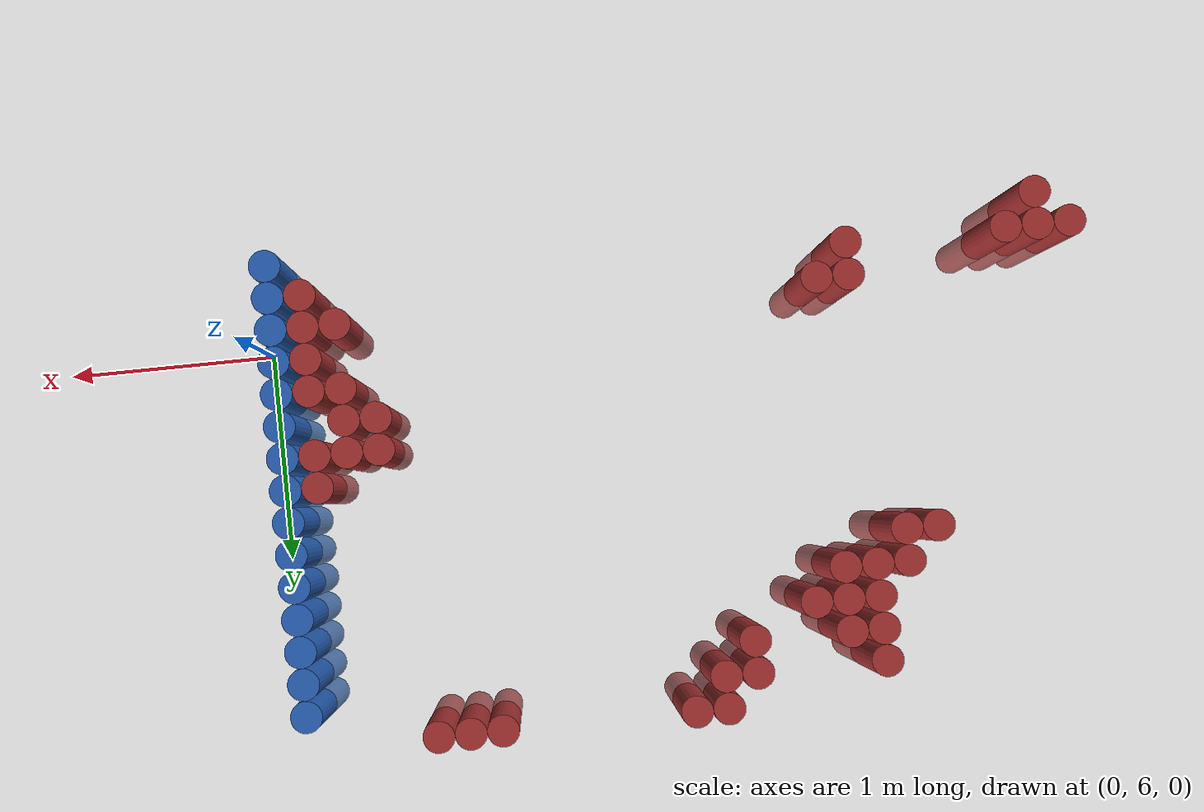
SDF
<sdf version="1.6">
 <world name="default">
  <model name="ground_plane">
   <static>1</static>
   <link name="link">
    <collision name="collision">
     <geometry><plane><normal>0 0 1</normal><size>100 100</size></plane></geometry>
     <surface><friction><ode><mu>100</mu><mu2>50</mu2></ode></friction></surface>
    </collision>
    <visual name="visual">
     <cast_shadows>0</cast_shadows>
     <geometry><plane><normal>0 0 1</normal><size>100 100</size></plane></geometry>
     <material>
      <script><uri>file://media/materials/scripts/gazebo.material</uri><name>Gazebo/Grey</name></script>
     </material>
    </visual>
   </link>
  </model>
  <model name="unit_cylinder_155">
   <static>1</static>
   <pose>-3.825000 5.775000 0.000000 0.000000 0.000000 0.000000</pose>
   <link name="link">
    <inertial>
     <mass>1</mass>
     <inertia><ixx>0.145833</ixx><ixy>0</ixy><ixz>0</ixz><iyy>0.145833</iyy><iyz>0</iyz><izz>0.125</izz></inertia>
    </inertial>
    <collision name="collision">
     <geometry><cylinder><radius>0.075000</radius><length>1</length></cylinder></geometry>
    </collision>
    <visual name="visual">
     <geometry><cylinder><radius>0.075000</radius><length>1</length></cylinder></geometry>
     <material>
      <ambient>0.648000 0.192000 0.192000 1</ambient>
      <diffuse>0.648000 0.192000 0.192000 1</diffuse>
     </material>
     <material>
      <script><name>Gazebo/Grey</name><uri>file://media/materials/scripts/gazebo.material</uri></script>
     </material>
    </visual>
   </link>
  </model>
  <model name="unit_cylinder_156">
   <static>1</static>
   <pose>-3.675000 5.625000 0.000000 0.000000 0.000000 0.000000</pose>
   <link name="link">
    <inertial>
     <mass>1</mass>
     <inertia><ixx>0.145833</ixx><ixy>0</ixy><ixz>0</ixz><iyy>0.145833</iyy><iyz>0</iyz><izz>0.125</izz></inertia>
    </inertial>
    <collision name="collision">
     <geometry><cylinder><radius>0.075000</radius><length>1</length></cylinder></geometry>
    </collision>
    <visual name="visual">
     <geometry><cylinder><radius>0.075000</radius><length>1</length></cylinder></geometry>
     <material>
      <ambient>0.648000 0.192000 0.192000 1</ambient>
      <diffuse>0.648000 0.192000 0.192000 1</diffuse>
     </material>
     <material>
      <script><name>Gazebo/Grey</name><uri>file://media/materials/scripts/gazebo.material</uri></script>
     </material>
    </visual>
   </link>
  </model>
  <model name="unit_cylinder_157">
   <static>1</static>
   <pose>-3.675000 5.775000 0.000000 0.000000 0.000000 0.000000</pose>
   <link name="link">
    <inertial>
     <mass>1</mass>
     <inertia><ixx>0.145833</ixx><ixy>0</ixy><ixz>0</ixz><iyy>0.145833</iyy><iyz>0</iyz><izz>0.125</izz></inertia>
    </inertial>
    <collision name="collision">
     <geometry><cylinder><radius>0.075000</radius><length>1</length></cylinder></geometry>
    </collision>
    <visual name="visual">
     <geometry><cylinder><radius>0.075000</radius><length>1</length></cylinder></geometry>
     <material>
      <ambient>0.648000 0.192000 0.192000 1</ambient>
      <diffuse>0.648000 0.192000 0.192000 1</diffuse>
     </material>
     <material>
      <script><name>Gazebo/Grey</name><uri>file://media/materials/scripts/gazebo.material</uri></script>
     </material>
    </visual>
   </link>
  </model>
  <model name="unit_cylinder_158">
   <static>1</static>
   <pose>-3.525000 5.775000 0.000000 0.000000 0.000000 0.000000</pose>
   <link name="link">
    <inertial>
     <mass>1</mass>
     <inertia><ixx>0.145833</ixx><ixy>0</ixy><ixz>0</ixz><iyy>0.145833</iyy><iyz>0</iyz><izz>0.125</izz></inertia>
    </inertial>
    <collision name="collision">
     <geometry><cylinder><radius>0.075000</radius><length>1</length></cylinder></geometry>
    </collision>
    <visual name="visual">
     <geometry><cylinder><radius>0.075000</radius><length>1</length></cylinder></geometry>
     <material>
      <ambient>0.648000 0.192000 0.192000 1</ambient>
      <diffuse>0.648000 0.192000 0.192000 1</diffuse>
     </material>
     <material>
      <script><name>Gazebo/Grey</name><uri>file://media/materials/scripts/gazebo.material</uri></script>
     </material>
    </visual>
   </link>
  </model>
  <model name="unit_cylinder_161">
   <static>1</static>
   <pose>-3.075000 7.125000 0.000000 0.000000 0.000000 0.000000</pose>
   <link name="link">
    <inertial>
     <mass>1</mass>
     <inertia><ixx>0.145833</ixx><ixy>0</ixy><ixz>0</ixz><iyy>0.145833</iyy><iyz>0</iyz><izz>0.125</izz></inertia>
    </inertial>
    <collision name="collision">
     <geometry><cylinder><radius>0.075000</radius><length>1</length></cylinder></geometry>
    </collision>
    <visual name="visual">
     <geometry><cylinder><radius>0.075000</radius><length>1</length></cylinder></geometry>
     <material>
      <ambient>0.648000 0.192000 0.192000 1</ambient>
      <diffuse>0.648000 0.192000 0.192000 1</diffuse>
     </material>
     <material>
      <script><name>Gazebo/Grey</name><uri>file://media/materials/scripts/gazebo.material</uri></script>
     </material>
    </visual>
   </link>
  </model>
  <model name="unit_cylinder_163">
   <static>1</static>
   <pose>-2.925000 7.125000 0.000000 0.000000 0.000000 0.000000</pose>
   <link name="link">
    <inertial>
     <mass>1</mass>
     <inertia><ixx>0.145833</ixx><ixy>0</ixy><ixz>0</ixz><iyy>0.145833</iyy><iyz>0</iyz><izz>0.125</izz></inertia>
    </inertial>
    <collision name="collision">
     <geometry><cylinder><radius>0.075000</radius><length>1</length></cylinder></geometry>
    </collision>
    <visual name="visual">
     <geometry><cylinder><radius>0.075000</radius><length>1</length></cylinder></geometry>
     <material>
      <ambient>0.648000 0.192000 0.192000 1</ambient>
      <diffuse>0.648000 0.192000 0.192000 1</diffuse>
     </material>
     <material>
      <script><name>Gazebo/Grey</name><uri>file://media/materials/scripts/gazebo.material</uri></script>
     </material>
    </visual>
   </link>
  </model>
  <model name="unit_cylinder_164">
   <static>1</static>
   <pose>-2.925000 7.275000 0.000000 0.000000 0.000000 0.000000</pose>
   <link name="link">
    <inertial>
     <mass>1</mass>
     <inertia><ixx>0.145833</ixx><ixy>0</ixy><ixz>0</ixz><iyy>0.145833</iyy><iyz>0</iyz><izz>0.125</izz></inertia>
    </inertial>
    <collision name="collision">
     <geometry><cylinder><radius>0.075000</radius><length>1</length></cylinder></geometry>
    </collision>
    <visual name="visual">
     <geometry><cylinder><radius>0.075000</radius><length>1</length></cylinder></geometry>
     <material>
      <ambient>0.648000 0.192000 0.192000 1</ambient>
      <diffuse>0.648000 0.192000 0.192000 1</diffuse>
     </material>
     <material>
      <script><name>Gazebo/Grey</name><uri>file://media/materials/scripts/gazebo.material</uri></script>
     </material>
    </visual>
   </link>
  </model>
  <model name="unit_cylinder_165">
   <static>1</static>
   <pose>-2.775000 5.775000 0.000000 0.000000 0.000000 0.000000</pose>
   <link name="link">
    <inertial>
     <mass>1</mass>
     <inertia><ixx>0.145833</ixx><ixy>0</ixy><ixz>0</ixz><iyy>0.145833</iyy><iyz>0</iyz><izz>0.125</izz></inertia>
    </inertial>
    <collision name="collision">
     <geometry><cylinder><radius>0.075000</radius><length>1</length></cylinder></geometry>
    </collision>
    <visual name="visual">
     <geometry><cylinder><radius>0.075000</radius><length>1</length></cylinder></geometry>
     <material>
      <ambient>0.648000 0.192000 0.192000 1</ambient>
      <diffuse>0.648000 0.192000 0.192000 1</diffuse>
     </material>
     <material>
      <script><name>Gazebo/Grey</name><uri>file://media/materials/scripts/gazebo.material</uri></script>
     </material>
    </visual>
   </link>
  </model>
  <model name="unit_cylinder_166">
   <static>1</static>
   <pose>-2.775000 5.925000 0.000000 0.000000 0.000000 0.000000</pose>
   <link name="link">
    <inertial>
     <mass>1</mass>
     <inertia><ixx>0.145833</ixx><ixy>0</ixy><ixz>0</ixz><iyy>0.145833</iyy><iyz>0</iyz><izz>0.125</izz></inertia>
    </inertial>
    <collision name="collision">
     <geometry><cylinder><radius>0.075000</radius><length>1</length></cylinder></geometry>
    </collision>
    <visual name="visual">
     <geometry><cylinder><radius>0.075000</radius><length>1</length></cylinder></geometry>
     <material>
      <ambient>0.648000 0.192000 0.192000 1</ambient>
      <diffuse>0.648000 0.192000 0.192000 1</diffuse>
     </material>
     <material>
      <script><name>Gazebo/Grey</name><uri>file://media/materials/scripts/gazebo.material</uri></script>
     </material>
    </visual>
   </link>
  </model>
  <model name="unit_cylinder_167">
   <static>1</static>
   <pose>-2.775000 7.275000 0.000000 0.000000 0.000000 0.000000</pose>
   <link name="link">
    <inertial>
     <mass>1</mass>
     <inertia><ixx>0.145833</ixx><ixy>0</ixy><ixz>0</ixz><iyy>0.145833</iyy><iyz>0</iyz><izz>0.125</izz></inertia>
    </inertial>
    <collision name="collision">
     <geometry><cylinder><radius>0.075000</radius><length>1</length></cylinder></geometry>
    </collision>
    <visual name="visual">
     <geometry><cylinder><radius>0.075000</radius><length>1</length></cylinder></geometry>
     <material>
      <ambient>0.648000 0.192000 0.192000 1</ambient>
      <diffuse>0.648000 0.192000 0.192000 1</diffuse>
     </material>
     <material>
      <script><name>Gazebo/Grey</name><uri>file://media/materials/scripts/gazebo.material</uri></script>
     </material>
    </visual>
   </link>
  </model>
  <model name="unit_cylinder_168">
   <static>1</static>
   <pose>-2.775000 7.425000 0.000000 0.000000 0.000000 0.000000</pose>
   <link name="link">
    <inertial>
     <mass>1</mass>
     <inertia><ixx>0.145833</ixx><ixy>0</ixy><ixz>0</ixz><iyy>0.145833</iyy><iyz>0</iyz><izz>0.125</izz></inertia>
    </inertial>
    <collision name="collision">
     <geometry><cylinder><radius>0.075000</radius><length>1</length></cylinder></geometry>
    </collision>
    <visual name="visual">
     <geometry><cylinder><radius>0.075000</radius><length>1</length></cylinder></geometry>
     <material>
      <ambient>0.648000 0.192000 0.192000 1</ambient>
      <diffuse>0.648000 0.192000 0.192000 1</diffuse>
     </material>
     <material>
      <script><name>Gazebo/Grey</name><uri>file://media/materials/scripts/gazebo.material</uri></script>
     </material>
    </visual>
   </link>
  </model>
  <model name="unit_cylinder_169">
   <static>1</static>
   <pose>-2.775000 7.575000 0.000000 0.000000 0.000000 0.000000</pose>
   <link name="link">
    <inertial>
     <mass>1</mass>
     <inertia><ixx>0.145833</ixx><ixy>0</ixy><ixz>0</ixz><iyy>0.145833</iyy><iyz>0</iyz><izz>0.125</izz></inertia>
    </inertial>
    <collision name="collision">
     <geometry><cylinder><radius>0.075000</radius><length>1</length></cylinder></geometry>
    </collision>
    <visual name="visual">
     <geometry><cylinder><radius>0.075000</radius><length>1</length></cylinder></geometry>
     <material>
      <ambient>0.648000 0.192000 0.192000 1</ambient>
      <diffuse>0.648000 0.192000 0.192000 1</diffuse>
     </material>
     <material>
      <script><name>Gazebo/Grey</name><uri>file://media/materials/scripts/gazebo.material</uri></script>
     </material>
    </visual>
   </link>
  </model>
  <model name="unit_cylinder_170">
   <static>1</static>
   <pose>-2.775000 7.725000 0.000000 0.000000 0.000000 0.000000</pose>
   <link name="link">
    <inertial>
     <mass>1</mass>
     <inertia><ixx>0.145833</ixx><ixy>0</ixy><ixz>0</ixz><iyy>0.145833</iyy><iyz>0</iyz><izz>0.125</izz></inertia>
    </inertial>
    <collision name="collision">
     <geometry><cylinder><radius>0.075000</radius><length>1</length></cylinder></geometry>
    </collision>
    <visual name="visual">
     <geometry><cylinder><radius>0.075000</radius><length>1</length></cylinder></geometry>
     <material>
      <ambient>0.648000 0.192000 0.192000 1</ambient>
      <diffuse>0.648000 0.192000 0.192000 1</diffuse>
     </material>
     <material>
      <script><name>Gazebo/Grey</name><uri>file://media/materials/scripts/gazebo.material</uri></script>
     </material>
    </visual>
   </link>
  </model>
  <model name="unit_cylinder_171">
   <static>1</static>
   <pose>-2.625000 5.925000 0.000000 0.000000 0.000000 0.000000</pose>
   <link name="link">
    <inertial>
     <mass>1</mass>
     <inertia><ixx>0.145833</ixx><ixy>0</ixy><ixz>0</ixz><iyy>0.145833</iyy><iyz>0</iyz><izz>0.125</izz></inertia>
    </inertial>
    <collision name="collision">
     <geometry><cylinder><radius>0.075000</radius><length>1</length></cylinder></geometry>
    </collision>
    <visual name="visual">
     <geometry><cylinder><radius>0.075000</radius><length>1</length></cylinder></geometry>
     <material>
      <ambient>0.648000 0.192000 0.192000 1</ambient>
      <diffuse>0.648000 0.192000 0.192000 1</diffuse>
     </material>
     <material>
      <script><name>Gazebo/Grey</name><uri>file://media/materials/scripts/gazebo.material</uri></script>
     </material>
    </visual>
   </link>
  </model>
  <model name="unit_cylinder_172">
   <static>1</static>
   <pose>-2.625000 7.275000 0.000000 0.000000 0.000000 0.000000</pose>
   <link name="link">
    <inertial>
     <mass>1</mass>
     <inertia><ixx>0.145833</ixx><ixy>0</ixy><ixz>0</ixz><iyy>0.145833</iyy><iyz>0</iyz><izz>0.125</izz></inertia>
    </inertial>
    <collision name="collision">
     <geometry><cylinder><radius>0.075000</radius><length>1</length></cylinder></geometry>
    </collision>
    <visual name="visual">
     <geometry><cylinder><radius>0.075000</radius><length>1</length></cylinder></geometry>
     <material>
      <ambient>0.648000 0.192000 0.192000 1</ambient>
      <diffuse>0.648000 0.192000 0.192000 1</diffuse>
     </material>
     <material>
      <script><name>Gazebo/Grey</name><uri>file://media/materials/scripts/gazebo.material</uri></script>
     </material>
    </visual>
   </link>
  </model>
  <model name="unit_cylinder_173">
   <static>1</static>
   <pose>-2.625000 7.425000 0.000000 0.000000 0.000000 0.000000</pose>
   <link name="link">
    <inertial>
     <mass>1</mass>
     <inertia><ixx>0.145833</ixx><ixy>0</ixy><ixz>0</ixz><iyy>0.145833</iyy><iyz>0</iyz><izz>0.125</izz></inertia>
    </inertial>
    <collision name="collision">
     <geometry><cylinder><radius>0.075000</radius><length>1</length></cylinder></geometry>
    </collision>
    <visual name="visual">
     <geometry><cylinder><radius>0.075000</radius><length>1</length></cylinder></geometry>
     <material>
      <ambient>0.648000 0.192000 0.192000 1</ambient>
      <diffuse>0.648000 0.192000 0.192000 1</diffuse>
     </material>
     <material>
      <script><name>Gazebo/Grey</name><uri>file://media/materials/scripts/gazebo.material</uri></script>
     </material>
    </visual>
   </link>
  </model>
  <model name="unit_cylinder_174">
   <static>1</static>
   <pose>-2.625000 7.575000 0.000000 0.000000 0.000000 0.000000</pose>
   <link name="link">
    <inertial>
     <mass>1</mass>
     <inertia><ixx>0.145833</ixx><ixy>0</ixy><ixz>0</ixz><iyy>0.145833</iyy><iyz>0</iyz><izz>0.125</izz></inertia>
    </inertial>
    <collision name="collision">
     <geometry><cylinder><radius>0.075000</radius><length>1</length></cylinder></geometry>
    </collision>
    <visual name="visual">
     <geometry><cylinder><radius>0.075000</radius><length>1</length></cylinder></geometry>
     <material>
      <ambient>0.648000 0.192000 0.192000 1</ambient>
      <diffuse>0.648000 0.192000 0.192000 1</diffuse>
     </material>
     <material>
      <script><name>Gazebo/Grey</name><uri>file://media/materials/scripts/gazebo.material</uri></script>
     </material>
    </visual>
   </link>
  </model>
  <model name="unit_cylinder_175">
   <static>1</static>
   <pose>-2.475000 7.425000 0.000000 0.000000 0.000000 0.000000</pose>
   <link name="link">
    <inertial>
     <mass>1</mass>
     <inertia><ixx>0.145833</ixx><ixy>0</ixy><ixz>0</ixz><iyy>0.145833</iyy><iyz>0</iyz><izz>0.125</izz></inertia>
    </inertial>
    <collision name="collision">
     <geometry><cylinder><radius>0.075000</radius><length>1</length></cylinder></geometry>
    </collision>
    <visual name="visual">
     <geometry><cylinder><radius>0.075000</radius><length>1</length></cylinder></geometry>
     <material>
      <ambient>0.648000 0.192000 0.192000 1</ambient>
      <diffuse>0.648000 0.192000 0.192000 1</diffuse>
     </material>
     <material>
      <script><name>Gazebo/Grey</name><uri>file://media/materials/scripts/gazebo.material</uri></script>
     </material>
    </visual>
   </link>
  </model>
  <model name="unit_cylinder_176">
   <static>1</static>
   <pose>-2.175000 7.575000 0.000000 0.000000 0.000000 0.000000</pose>
   <link name="link">
    <inertial>
     <mass>1</mass>
     <inertia><ixx>0.145833</ixx><ixy>0</ixy><ixz>0</ixz><iyy>0.145833</iyy><iyz>0</iyz><izz>0.125</izz></inertia>
    </inertial>
    <collision name="collision">
     <geometry><cylinder><radius>0.075000</radius><length>1</length></cylinder></geometry>
    </collision>
    <visual name="visual">
     <geometry><cylinder><radius>0.075000</radius><length>1</length></cylinder></geometry>
     <material>
      <ambient>0.648000 0.192000 0.192000 1</ambient>
      <diffuse>0.648000 0.192000 0.192000 1</diffuse>
     </material>
     <material>
      <script><name>Gazebo/Grey</name><uri>file://media/materials/scripts/gazebo.material</uri></script>
     </material>
    </visual>
   </link>
  </model>
  <model name="unit_cylinder_177">
   <static>1</static>
   <pose>-2.175000 7.725000 0.000000 0.000000 0.000000 0.000000</pose>
   <link name="link">
    <inertial>
     <mass>1</mass>
     <inertia><ixx>0.145833</ixx><ixy>0</ixy><ixz>0</ixz><iyy>0.145833</iyy><iyz>0</iyz><izz>0.125</izz></inertia>
    </inertial>
    <collision name="collision">
     <geometry><cylinder><radius>0.075000</radius><length>1</length></cylinder></geometry>
    </collision>
    <visual name="visual">
     <geometry><cylinder><radius>0.075000</radius><length>1</length></cylinder></geometry>
     <material>
      <ambient>0.648000 0.192000 0.192000 1</ambient>
      <diffuse>0.648000 0.192000 0.192000 1</diffuse>
     </material>
     <material>
      <script><name>Gazebo/Grey</name><uri>file://media/materials/scripts/gazebo.material</uri></script>
     </material>
    </visual>
   </link>
  </model>
  <model name="unit_cylinder_178">
   <static>1</static>
   <pose>-2.025000 7.725000 0.000000 0.000000 0.000000 0.000000</pose>
   <link name="link">
    <inertial>
     <mass>1</mass>
     <inertia><ixx>0.145833</ixx><ixy>0</ixy><ixz>0</ixz><iyy>0.145833</iyy><iyz>0</iyz><izz>0.125</izz></inertia>
    </inertial>
    <collision name="collision">
     <geometry><cylinder><radius>0.075000</radius><length>1</length></cylinder></geometry>
    </collision>
    <visual name="visual">
     <geometry><cylinder><radius>0.075000</radius><length>1</length></cylinder></geometry>
     <material>
      <ambient>0.648000 0.192000 0.192000 1</ambient>
      <diffuse>0.648000 0.192000 0.192000 1</diffuse>
     </material>
     <material>
      <script><name>Gazebo/Grey</name><uri>file://media/materials/scripts/gazebo.material</uri></script>
     </material>
    </visual>
   </link>
  </model>
  <model name="unit_cylinder_179">
   <static>1</static>
   <pose>-2.025000 7.875000 0.000000 0.000000 0.000000 0.000000</pose>
   <link name="link">
    <inertial>
     <mass>1</mass>
     <inertia><ixx>0.145833</ixx><ixy>0</ixy><ixz>0</ixz><iyy>0.145833</iyy><iyz>0</iyz><izz>0.125</izz></inertia>
    </inertial>
    <collision name="collision">
     <geometry><cylinder><radius>0.075000</radius><length>1</length></cylinder></geometry>
    </collision>
    <visual name="visual">
     <geometry><cylinder><radius>0.075000</radius><length>1</length></cylinder></geometry>
     <material>
      <ambient>0.648000 0.192000 0.192000 1</ambient>
      <diffuse>0.648000 0.192000 0.192000 1</diffuse>
     </material>
     <material>
      <script><name>Gazebo/Grey</name><uri>file://media/materials/scripts/gazebo.material</uri></script>
     </material>
    </visual>
   </link>
  </model>
  <model name="unit_cylinder_180">
   <static>1</static>
   <pose>-1.875000 7.875000 0.000000 0.000000 0.000000 0.000000</pose>
   <link name="link">
    <inertial>
     <mass>1</mass>
     <inertia><ixx>0.145833</ixx><ixy>0</ixy><ixz>0</ixz><iyy>0.145833</iyy><iyz>0</iyz><izz>0.125</izz></inertia>
    </inertial>
    <collision name="collision">
     <geometry><cylinder><radius>0.075000</radius><length>1</length></cylinder></geometry>
    </collision>
    <visual name="visual">
     <geometry><cylinder><radius>0.075000</radius><length>1</length></cylinder></geometry>
     <material>
      <ambient>0.648000 0.192000 0.192000 1</ambient>
      <diffuse>0.648000 0.192000 0.192000 1</diffuse>
     </material>
     <material>
      <script><name>Gazebo/Grey</name><uri>file://media/materials/scripts/gazebo.material</uri></script>
     </material>
    </visual>
   </link>
  </model>
  <model name="unit_cylinder_197">
   <static>1</static>
   <pose>-0.975000 7.875000 0.000000 0.000000 0.000000 0.000000</pose>
   <link name="link">
    <inertial>
     <mass>1</mass>
     <inertia><ixx>0.145833</ixx><ixy>0</ixy><ixz>0</ixz><iyy>0.145833</iyy><iyz>0</iyz><izz>0.125</izz></inertia>
    </inertial>
    <collision name="collision">
     <geometry><cylinder><radius>0.075000</radius><length>1</length></cylinder></geometry>
    </collision>
    <visual name="visual">
     <geometry><cylinder><radius>0.075000</radius><length>1</length></cylinder></geometry>
     <material>
      <ambient>0.648000 0.192000 0.192000 1</ambient>
      <diffuse>0.648000 0.192000 0.192000 1</diffuse>
     </material>
     <material>
      <script><name>Gazebo/Grey</name><uri>file://media/materials/scripts/gazebo.material</uri></script>
     </material>
    </visual>
   </link>
  </model>
  <model name="unit_cylinder_203">
   <static>1</static>
   <pose>-0.825000 7.875000 0.000000 0.000000 0.000000 0.000000</pose>
   <link name="link">
    <inertial>
     <mass>1</mass>
     <inertia><ixx>0.145833</ixx><ixy>0</ixy><ixz>0</ixz><iyy>0.145833</iyy><iyz>0</iyz><izz>0.125</izz></inertia>
    </inertial>
    <collision name="collision">
     <geometry><cylinder><radius>0.075000</radius><length>1</length></cylinder></geometry>
    </collision>
    <visual name="visual">
     <geometry><cylinder><radius>0.075000</radius><length>1</length></cylinder></geometry>
     <material>
      <ambient>0.648000 0.192000 0.192000 1</ambient>
      <diffuse>0.648000 0.192000 0.192000 1</diffuse>
     </material>
     <material>
      <script><name>Gazebo/Grey</name><uri>file://media/materials/scripts/gazebo.material</uri></script>
     </material>
    </visual>
   </link>
  </model>
  <model name="unit_cylinder_207">
   <static>1</static>
   <pose>-0.675000 7.875000 0.000000 0.000000 0.000000 0.000000</pose>
   <link name="link">
    <inertial>
     <mass>1</mass>
     <inertia><ixx>0.145833</ixx><ixy>0</ixy><ixz>0</ixz><iyy>0.145833</iyy><iyz>0</iyz><izz>0.125</izz></inertia>
    </inertial>
    <collision name="collision">
     <geometry><cylinder><radius>0.075000</radius><length>1</length></cylinder></geometry>
    </collision>
    <visual name="visual">
     <geometry><cylinder><radius>0.075000</radius><length>1</length></cylinder></geometry>
     <material>
      <ambient>0.648000 0.192000 0.192000 1</ambient>
      <diffuse>0.648000 0.192000 0.192000 1</diffuse>
     </material>
     <material>
      <script><name>Gazebo/Grey</name><uri>file://media/materials/scripts/gazebo.material</uri></script>
     </material>
    </visual>
   </link>
  </model>
  <model name="unit_cylinder_209">
   <static>1</static>
   <pose>-0.525000 6.375000 0.000000 0.000000 0.000000 0.000000</pose>
   <link name="link">
    <inertial>
     <mass>1</mass>
     <inertia><ixx>0.145833</ixx><ixy>0</ixy><ixz>0</ixz><iyy>0.145833</iyy><iyz>0</iyz><izz>0.125</izz></inertia>
    </inertial>
    <collision name="collision">
     <geometry><cylinder><radius>0.075000</radius><length>1</length></cylinder></geometry>
    </collision>
    <visual name="visual">
     <geometry><cylinder><radius>0.075000</radius><length>1</length></cylinder></geometry>
     <material>
      <ambient>0.648000 0.192000 0.192000 1</ambient>
      <diffuse>0.648000 0.192000 0.192000 1</diffuse>
     </material>
     <material>
      <script><name>Gazebo/Grey</name><uri>file://media/materials/scripts/gazebo.material</uri></script>
     </material>
    </visual>
   </link>
  </model>
  <model name="unit_cylinder_210">
   <static>1</static>
   <pose>-0.525000 6.525000 0.000000 0.000000 0.000000 0.000000</pose>
   <link name="link">
    <inertial>
     <mass>1</mass>
     <inertia><ixx>0.145833</ixx><ixy>0</ixy><ixz>0</ixz><iyy>0.145833</iyy><iyz>0</iyz><izz>0.125</izz></inertia>
    </inertial>
    <collision name="collision">
     <geometry><cylinder><radius>0.075000</radius><length>1</length></cylinder></geometry>
    </collision>
    <visual name="visual">
     <geometry><cylinder><radius>0.075000</radius><length>1</length></cylinder></geometry>
     <material>
      <ambient>0.648000 0.192000 0.192000 1</ambient>
      <diffuse>0.648000 0.192000 0.192000 1</diffuse>
     </material>
     <material>
      <script><name>Gazebo/Grey</name><uri>file://media/materials/scripts/gazebo.material</uri></script>
     </material>
    </visual>
   </link>
  </model>
  <model name="unit_cylinder_214">
   <static>1</static>
   <pose>-0.375000 5.925000 0.000000 0.000000 0.000000 0.000000</pose>
   <link name="link">
    <inertial>
     <mass>1</mass>
     <inertia><ixx>0.145833</ixx><ixy>0</ixy><ixz>0</ixz><iyy>0.145833</iyy><iyz>0</iyz><izz>0.125</izz></inertia>
    </inertial>
    <collision name="collision">
     <geometry><cylinder><radius>0.075000</radius><length>1</length></cylinder></geometry>
    </collision>
    <visual name="visual">
     <geometry><cylinder><radius>0.075000</radius><length>1</length></cylinder></geometry>
     <material>
      <ambient>0.648000 0.192000 0.192000 1</ambient>
      <diffuse>0.648000 0.192000 0.192000 1</diffuse>
     </material>
     <material>
      <script><name>Gazebo/Grey</name><uri>file://media/materials/scripts/gazebo.material</uri></script>
     </material>
    </visual>
   </link>
  </model>
  <model name="unit_cylinder_215">
   <static>1</static>
   <pose>-0.375000 6.225000 0.000000 0.000000 0.000000 0.000000</pose>
   <link name="link">
    <inertial>
     <mass>1</mass>
     <inertia><ixx>0.145833</ixx><ixy>0</ixy><ixz>0</ixz><iyy>0.145833</iyy><iyz>0</iyz><izz>0.125</izz></inertia>
    </inertial>
    <collision name="collision">
     <geometry><cylinder><radius>0.075000</radius><length>1</length></cylinder></geometry>
    </collision>
    <visual name="visual">
     <geometry><cylinder><radius>0.075000</radius><length>1</length></cylinder></geometry>
     <material>
      <ambient>0.648000 0.192000 0.192000 1</ambient>
      <diffuse>0.648000 0.192000 0.192000 1</diffuse>
     </material>
     <material>
      <script><name>Gazebo/Grey</name><uri>file://media/materials/scripts/gazebo.material</uri></script>
     </material>
    </visual>
   </link>
  </model>
  <model name="unit_cylinder_216">
   <static>1</static>
   <pose>-0.375000 6.375000 0.000000 0.000000 0.000000 0.000000</pose>
   <link name="link">
    <inertial>
     <mass>1</mass>
     <inertia><ixx>0.145833</ixx><ixy>0</ixy><ixz>0</ixz><iyy>0.145833</iyy><iyz>0</iyz><izz>0.125</izz></inertia>
    </inertial>
    <collision name="collision">
     <geometry><cylinder><radius>0.075000</radius><length>1</length></cylinder></geometry>
    </collision>
    <visual name="visual">
     <geometry><cylinder><radius>0.075000</radius><length>1</length></cylinder></geometry>
     <material>
      <ambient>0.648000 0.192000 0.192000 1</ambient>
      <diffuse>0.648000 0.192000 0.192000 1</diffuse>
     </material>
     <material>
      <script><name>Gazebo/Grey</name><uri>file://media/materials/scripts/gazebo.material</uri></script>
     </material>
    </visual>
   </link>
  </model>
  <model name="unit_cylinder_217">
   <static>1</static>
   <pose>-0.375000 6.525000 0.000000 0.000000 0.000000 0.000000</pose>
   <link name="link">
    <inertial>
     <mass>1</mass>
     <inertia><ixx>0.145833</ixx><ixy>0</ixy><ixz>0</ixz><iyy>0.145833</iyy><iyz>0</iyz><izz>0.125</izz></inertia>
    </inertial>
    <collision name="collision">
     <geometry><cylinder><radius>0.075000</radius><length>1</length></cylinder></geometry>
    </collision>
    <visual name="visual">
     <geometry><cylinder><radius>0.075000</radius><length>1</length></cylinder></geometry>
     <material>
      <ambient>0.648000 0.192000 0.192000 1</ambient>
      <diffuse>0.648000 0.192000 0.192000 1</diffuse>
     </material>
     <material>
      <script><name>Gazebo/Grey</name><uri>file://media/materials/scripts/gazebo.material</uri></script>
     </material>
    </visual>
   </link>
  </model>
  <model name="unit_cylinder_224">
   <static>1</static>
   <pose>-0.225000 5.775000 0.000000 0.000000 0.000000 0.000000</pose>
   <link name="link">
    <inertial>
     <mass>1</mass>
     <inertia><ixx>0.145833</ixx><ixy>0</ixy><ixz>0</ixz><iyy>0.145833</iyy><iyz>0</iyz><izz>0.125</izz></inertia>
    </inertial>
    <collision name="collision">
     <geometry><cylinder><radius>0.075000</radius><length>1</length></cylinder></geometry>
    </collision>
    <visual name="visual">
     <geometry><cylinder><radius>0.075000</radius><length>1</length></cylinder></geometry>
     <material>
      <ambient>0.648000 0.192000 0.192000 1</ambient>
      <diffuse>0.648000 0.192000 0.192000 1</diffuse>
     </material>
     <material>
      <script><name>Gazebo/Grey</name><uri>file://media/materials/scripts/gazebo.material</uri></script>
     </material>
    </visual>
   </link>
  </model>
  <model name="unit_cylinder_225">
   <static>1</static>
   <pose>-0.225000 5.925000 0.000000 0.000000 0.000000 0.000000</pose>
   <link name="link">
    <inertial>
     <mass>1</mass>
     <inertia><ixx>0.145833</ixx><ixy>0</ixy><ixz>0</ixz><iyy>0.145833</iyy><iyz>0</iyz><izz>0.125</izz></inertia>
    </inertial>
    <collision name="collision">
     <geometry><cylinder><radius>0.075000</radius><length>1</length></cylinder></geometry>
    </collision>
    <visual name="visual">
     <geometry><cylinder><radius>0.075000</radius><length>1</length></cylinder></geometry>
     <material>
      <ambient>0.648000 0.192000 0.192000 1</ambient>
      <diffuse>0.648000 0.192000 0.192000 1</diffuse>
     </material>
     <material>
      <script><name>Gazebo/Grey</name><uri>file://media/materials/scripts/gazebo.material</uri></script>
     </material>
    </visual>
   </link>
  </model>
  <model name="unit_cylinder_226">
   <static>1</static>
   <pose>-0.225000 6.075000 0.000000 0.000000 0.000000 0.000000</pose>
   <link name="link">
    <inertial>
     <mass>1</mass>
     <inertia><ixx>0.145833</ixx><ixy>0</ixy><ixz>0</ixz><iyy>0.145833</iyy><iyz>0</iyz><izz>0.125</izz></inertia>
    </inertial>
    <collision name="collision">
     <geometry><cylinder><radius>0.075000</radius><length>1</length></cylinder></geometry>
    </collision>
    <visual name="visual">
     <geometry><cylinder><radius>0.075000</radius><length>1</length></cylinder></geometry>
     <material>
      <ambient>0.648000 0.192000 0.192000 1</ambient>
      <diffuse>0.648000 0.192000 0.192000 1</diffuse>
     </material>
     <material>
      <script><name>Gazebo/Grey</name><uri>file://media/materials/scripts/gazebo.material</uri></script>
     </material>
    </visual>
   </link>
  </model>
  <model name="unit_cylinder_227">
   <static>1</static>
   <pose>-0.225000 6.225000 0.000000 0.000000 0.000000 0.000000</pose>
   <link name="link">
    <inertial>
     <mass>1</mass>
     <inertia><ixx>0.145833</ixx><ixy>0</ixy><ixz>0</ixz><iyy>0.145833</iyy><iyz>0</iyz><izz>0.125</izz></inertia>
    </inertial>
    <collision name="collision">
     <geometry><cylinder><radius>0.075000</radius><length>1</length></cylinder></geometry>
    </collision>
    <visual name="visual">
     <geometry><cylinder><radius>0.075000</radius><length>1</length></cylinder></geometry>
     <material>
      <ambient>0.648000 0.192000 0.192000 1</ambient>
      <diffuse>0.648000 0.192000 0.192000 1</diffuse>
     </material>
     <material>
      <script><name>Gazebo/Grey</name><uri>file://media/materials/scripts/gazebo.material</uri></script>
     </material>
    </visual>
   </link>
  </model>
  <model name="unit_cylinder_228">
   <static>1</static>
   <pose>-0.225000 6.525000 0.000000 0.000000 0.000000 0.000000</pose>
   <link name="link">
    <inertial>
     <mass>1</mass>
     <inertia><ixx>0.145833</ixx><ixy>0</ixy><ixz>0</ixz><iyy>0.145833</iyy><iyz>0</iyz><izz>0.125</izz></inertia>
    </inertial>
    <collision name="collision">
     <geometry><cylinder><radius>0.075000</radius><length>1</length></cylinder></geometry>
    </collision>
    <visual name="visual">
     <geometry><cylinder><radius>0.075000</radius><length>1</length></cylinder></geometry>
     <material>
      <ambient>0.648000 0.192000 0.192000 1</ambient>
      <diffuse>0.648000 0.192000 0.192000 1</diffuse>
     </material>
     <material>
      <script><name>Gazebo/Grey</name><uri>file://media/materials/scripts/gazebo.material</uri></script>
     </material>
    </visual>
   </link>
  </model>
  <model name="unit_cylinder_229">
   <static>1</static>
   <pose>-0.225000 6.675000 0.000000 0.000000 0.000000 0.000000</pose>
   <link name="link">
    <inertial>
     <mass>1</mass>
     <inertia><ixx>0.145833</ixx><ixy>0</ixy><ixz>0</ixz><iyy>0.145833</iyy><iyz>0</iyz><izz>0.125</izz></inertia>
    </inertial>
    <collision name="collision">
     <geometry><cylinder><radius>0.075000</radius><length>1</length></cylinder></geometry>
    </collision>
    <visual name="visual">
     <geometry><cylinder><radius>0.075000</radius><length>1</length></cylinder></geometry>
     <material>
      <ambient>0.648000 0.192000 0.192000 1</ambient>
      <diffuse>0.648000 0.192000 0.192000 1</diffuse>
     </material>
     <material>
      <script><name>Gazebo/Grey</name><uri>file://media/materials/scripts/gazebo.material</uri></script>
     </material>
    </visual>
   </link>
  </model>
  <model name="unit_cylinder_238">
   <static>1</static>
   <pose>-0.075000 5.625000 0.000000 0.000000 0.000000 0.000000</pose>
   <link name="link">
    <inertial>
     <mass>1</mass>
     <inertia><ixx>0.145833</ixx><ixy>0</ixy><ixz>0</ixz><iyy>0.145833</iyy><iyz>0</iyz><izz>0.125</izz></inertia>
    </inertial>
    <collision name="collision">
     <geometry><cylinder><radius>0.075000</radius><length>1</length></cylinder></geometry>
    </collision>
    <visual name="visual">
     <geometry><cylinder><radius>0.075000</radius><length>1</length></cylinder></geometry>
     <material>
      <ambient>0.152000 0.379000 0.720000 1</ambient>
      <diffuse>0.152000 0.379000 0.720000 1</diffuse>
     </material>
     <material>
      <script><name>Gazebo/Grey</name><uri>file://media/materials/scripts/gazebo.material</uri></script>
     </material>
    </visual>
   </link>
  </model>
  <model name="unit_cylinder_239">
   <static>1</static>
   <pose>-0.075000 5.775000 0.000000 0.000000 0.000000 0.000000</pose>
   <link name="link">
    <inertial>
     <mass>1</mass>
     <inertia><ixx>0.145833</ixx><ixy>0</ixy><ixz>0</ixz><iyy>0.145833</iyy><iyz>0</iyz><izz>0.125</izz></inertia>
    </inertial>
    <collision name="collision">
     <geometry><cylinder><radius>0.075000</radius><length>1</length></cylinder></geometry>
    </collision>
    <visual name="visual">
     <geometry><cylinder><radius>0.075000</radius><length>1</length></cylinder></geometry>
     <material>
      <ambient>0.152000 0.379000 0.720000 1</ambient>
      <diffuse>0.152000 0.379000 0.720000 1</diffuse>
     </material>
     <material>
      <script><name>Gazebo/Grey</name><uri>file://media/materials/scripts/gazebo.material</uri></script>
     </material>
    </visual>
   </link>
  </model>
  <model name="unit_cylinder_240">
   <static>1</static>
   <pose>-0.075000 5.925000 0.000000 0.000000 0.000000 0.000000</pose>
   <link name="link">
    <inertial>
     <mass>1</mass>
     <inertia><ixx>0.145833</ixx><ixy>0</ixy><ixz>0</ixz><iyy>0.145833</iyy><iyz>0</iyz><izz>0.125</izz></inertia>
    </inertial>
    <collision name="collision">
     <geometry><cylinder><radius>0.075000</radius><length>1</length></cylinder></geometry>
    </collision>
    <visual name="visual">
     <geometry><cylinder><radius>0.075000</radius><length>1</length></cylinder></geometry>
     <material>
      <ambient>0.152000 0.379000 0.720000 1</ambient>
      <diffuse>0.152000 0.379000 0.720000 1</diffuse>
     </material>
     <material>
      <script><name>Gazebo/Grey</name><uri>file://media/materials/scripts/gazebo.material</uri></script>
     </material>
    </visual>
   </link>
  </model>
  <model name="unit_cylinder_241">
   <static>1</static>
   <pose>-0.075000 6.075000 0.000000 0.000000 0.000000 0.000000</pose>
   <link name="link">
    <inertial>
     <mass>1</mass>
     <inertia><ixx>0.145833</ixx><ixy>0</ixy><ixz>0</ixz><iyy>0.145833</iyy><iyz>0</iyz><izz>0.125</izz></inertia>
    </inertial>
    <collision name="collision">
     <geometry><cylinder><radius>0.075000</radius><length>1</length></cylinder></geometry>
    </collision>
    <visual name="visual">
     <geometry><cylinder><radius>0.075000</radius><length>1</length></cylinder></geometry>
     <material>
      <ambient>0.152000 0.379000 0.720000 1</ambient>
      <diffuse>0.152000 0.379000 0.720000 1</diffuse>
     </material>
     <material>
      <script><name>Gazebo/Grey</name><uri>file://media/materials/scripts/gazebo.material</uri></script>
     </material>
    </visual>
   </link>
  </model>
  <model name="unit_cylinder_242">
   <static>1</static>
   <pose>-0.075000 6.225000 0.000000 0.000000 0.000000 0.000000</pose>
   <link name="link">
    <inertial>
     <mass>1</mass>
     <inertia><ixx>0.145833</ixx><ixy>0</ixy><ixz>0</ixz><iyy>0.145833</iyy><iyz>0</iyz><izz>0.125</izz></inertia>
    </inertial>
    <collision name="collision">
     <geometry><cylinder><radius>0.075000</radius><length>1</length></cylinder></geometry>
    </collision>
    <visual name="visual">
     <geometry><cylinder><radius>0.075000</radius><length>1</length></cylinder></geometry>
     <material>
      <ambient>0.152000 0.379000 0.720000 1</ambient>
      <diffuse>0.152000 0.379000 0.720000 1</diffuse>
     </material>
     <material>
      <script><name>Gazebo/Grey</name><uri>file://media/materials/scripts/gazebo.material</uri></script>
     </material>
    </visual>
   </link>
  </model>
  <model name="unit_cylinder_243">
   <static>1</static>
   <pose>-0.075000 6.375000 0.000000 0.000000 0.000000 0.000000</pose>
   <link name="link">
    <inertial>
     <mass>1</mass>
     <inertia><ixx>0.145833</ixx><ixy>0</ixy><ixz>0</ixz><iyy>0.145833</iyy><iyz>0</iyz><izz>0.125</izz></inertia>
    </inertial>
    <collision name="collision">
     <geometry><cylinder><radius>0.075000</radius><length>1</length></cylinder></geometry>
    </collision>
    <visual name="visual">
     <geometry><cylinder><radius>0.075000</radius><length>1</length></cylinder></geometry>
     <material>
      <ambient>0.152000 0.379000 0.720000 1</ambient>
      <diffuse>0.152000 0.379000 0.720000 1</diffuse>
     </material>
     <material>
      <script><name>Gazebo/Grey</name><uri>file://media/materials/scripts/gazebo.material</uri></script>
     </material>
    </visual>
   </link>
  </model>
  <model name="unit_cylinder_244">
   <static>1</static>
   <pose>-0.075000 6.525000 0.000000 0.000000 0.000000 0.000000</pose>
   <link name="link">
    <inertial>
     <mass>1</mass>
     <inertia><ixx>0.145833</ixx><ixy>0</ixy><ixz>0</ixz><iyy>0.145833</iyy><iyz>0</iyz><izz>0.125</izz></inertia>
    </inertial>
    <collision name="collision">
     <geometry><cylinder><radius>0.075000</radius><length>1</length></cylinder></geometry>
    </collision>
    <visual name="visual">
     <geometry><cylinder><radius>0.075000</radius><length>1</length></cylinder></geometry>
     <material>
      <ambient>0.152000 0.379000 0.720000 1</ambient>
      <diffuse>0.152000 0.379000 0.720000 1</diffuse>
     </material>
     <material>
      <script><name>Gazebo/Grey</name><uri>file://media/materials/scripts/gazebo.material</uri></script>
     </material>
    </visual>
   </link>
  </model>
  <model name="unit_cylinder_245">
   <static>1</static>
   <pose>-0.075000 6.675000 0.000000 0.000000 0.000000 0.000000</pose>
   <link name="link">
    <inertial>
     <mass>1</mass>
     <inertia><ixx>0.145833</ixx><ixy>0</ixy><ixz>0</ixz><iyy>0.145833</iyy><iyz>0</iyz><izz>0.125</izz></inertia>
    </inertial>
    <collision name="collision">
     <geometry><cylinder><radius>0.075000</radius><length>1</length></cylinder></geometry>
    </collision>
    <visual name="visual">
     <geometry><cylinder><radius>0.075000</radius><length>1</length></cylinder></geometry>
     <material>
      <ambient>0.152000 0.379000 0.720000 1</ambient>
      <diffuse>0.152000 0.379000 0.720000 1</diffuse>
     </material>
     <material>
      <script><name>Gazebo/Grey</name><uri>file://media/materials/scripts/gazebo.material</uri></script>
     </material>
    </visual>
   </link>
  </model>
  <model name="unit_cylinder_246">
   <static>1</static>
   <pose>-0.075000 6.825000 0.000000 0.000000 0.000000 0.000000</pose>
   <link name="link">
    <inertial>
     <mass>1</mass>
     <inertia><ixx>0.145833</ixx><ixy>0</ixy><ixz>0</ixz><iyy>0.145833</iyy><iyz>0</iyz><izz>0.125</izz></inertia>
    </inertial>
    <collision name="collision">
     <geometry><cylinder><radius>0.075000</radius><length>1</length></cylinder></geometry>
    </collision>
    <visual name="visual">
     <geometry><cylinder><radius>0.075000</radius><length>1</length></cylinder></geometry>
     <material>
      <ambient>0.152000 0.379000 0.720000 1</ambient>
      <diffuse>0.152000 0.379000 0.720000 1</diffuse>
     </material>
     <material>
      <script><name>Gazebo/Grey</name><uri>file://media/materials/scripts/gazebo.material</uri></script>
     </material>
    </visual>
   </link>
  </model>
  <model name="unit_cylinder_247">
   <static>1</static>
   <pose>-0.075000 6.975000 0.000000 0.000000 0.000000 0.000000</pose>
   <link name="link">
    <inertial>
     <mass>1</mass>
     <inertia><ixx>0.145833</ixx><ixy>0</ixy><ixz>0</ixz><iyy>0.145833</iyy><iyz>0</iyz><izz>0.125</izz></inertia>
    </inertial>
    <collision name="collision">
     <geometry><cylinder><radius>0.075000</radius><length>1</length></cylinder></geometry>
    </collision>
    <visual name="visual">
     <geometry><cylinder><radius>0.075000</radius><length>1</length></cylinder></geometry>
     <material>
      <ambient>0.152000 0.379000 0.720000 1</ambient>
      <diffuse>0.152000 0.379000 0.720000 1</diffuse>
     </material>
     <material>
      <script><name>Gazebo/Grey</name><uri>file://media/materials/scripts/gazebo.material</uri></script>
     </material>
    </visual>
   </link>
  </model>
  <model name="unit_cylinder_248">
   <static>1</static>
   <pose>-0.075000 7.125000 0.000000 0.000000 0.000000 0.000000</pose>
   <link name="link">
    <inertial>
     <mass>1</mass>
     <inertia><ixx>0.145833</ixx><ixy>0</ixy><ixz>0</ixz><iyy>0.145833</iyy><iyz>0</iyz><izz>0.125</izz></inertia>
    </inertial>
    <collision name="collision">
     <geometry><cylinder><radius>0.075000</radius><length>1</length></cylinder></geometry>
    </collision>
    <visual name="visual">
     <geometry><cylinder><radius>0.075000</radius><length>1</length></cylinder></geometry>
     <material>
      <ambient>0.152000 0.379000 0.720000 1</ambient>
      <diffuse>0.152000 0.379000 0.720000 1</diffuse>
     </material>
     <material>
      <script><name>Gazebo/Grey</name><uri>file://media/materials/scripts/gazebo.material</uri></script>
     </material>
    </visual>
   </link>
  </model>
  <model name="unit_cylinder_249">
   <static>1</static>
   <pose>-0.075000 7.275000 0.000000 0.000000 0.000000 0.000000</pose>
   <link name="link">
    <inertial>
     <mass>1</mass>
     <inertia><ixx>0.145833</ixx><ixy>0</ixy><ixz>0</ixz><iyy>0.145833</iyy><iyz>0</iyz><izz>0.125</izz></inertia>
    </inertial>
    <collision name="collision">
     <geometry><cylinder><radius>0.075000</radius><length>1</length></cylinder></geometry>
    </collision>
    <visual name="visual">
     <geometry><cylinder><radius>0.075000</radius><length>1</length></cylinder></geometry>
     <material>
      <ambient>0.152000 0.379000 0.720000 1</ambient>
      <diffuse>0.152000 0.379000 0.720000 1</diffuse>
     </material>
     <material>
      <script><name>Gazebo/Grey</name><uri>file://media/materials/scripts/gazebo.material</uri></script>
     </material>
    </visual>
   </link>
  </model>
  <model name="unit_cylinder_250">
   <static>1</static>
   <pose>-0.075000 7.425000 0.000000 0.000000 0.000000 0.000000</pose>
   <link name="link">
    <inertial>
     <mass>1</mass>
     <inertia><ixx>0.145833</ixx><ixy>0</ixy><ixz>0</ixz><iyy>0.145833</iyy><iyz>0</iyz><izz>0.125</izz></inertia>
    </inertial>
    <collision name="collision">
     <geometry><cylinder><radius>0.075000</radius><length>1</length></cylinder></geometry>
    </collision>
    <visual name="visual">
     <geometry><cylinder><radius>0.075000</radius><length>1</length></cylinder></geometry>
     <material>
      <ambient>0.152000 0.379000 0.720000 1</ambient>
      <diffuse>0.152000 0.379000 0.720000 1</diffuse>
     </material>
     <material>
      <script><name>Gazebo/Grey</name><uri>file://media/materials/scripts/gazebo.material</uri></script>
     </material>
    </visual>
   </link>
  </model>
  <model name="unit_cylinder_251">
   <static>1</static>
   <pose>-0.075000 7.575000 0.000000 0.000000 0.000000 0.000000</pose>
   <link name="link">
    <inertial>
     <mass>1</mass>
     <inertia><ixx>0.145833</ixx><ixy>0</ixy><ixz>0</ixz><iyy>0.145833</iyy><iyz>0</iyz><izz>0.125</izz></inertia>
    </inertial>
    <collision name="collision">
     <geometry><cylinder><radius>0.075000</radius><length>1</length></cylinder></geometry>
    </collision>
    <visual name="visual">
     <geometry><cylinder><radius>0.075000</radius><length>1</length></cylinder></geometry>
     <material>
      <ambient>0.152000 0.379000 0.720000 1</ambient>
      <diffuse>0.152000 0.379000 0.720000 1</diffuse>
     </material>
     <material>
      <script><name>Gazebo/Grey</name><uri>file://media/materials/scripts/gazebo.material</uri></script>
     </material>
    </visual>
   </link>
  </model>
  <model name="unit_cylinder_252">
   <static>1</static>
   <pose>-0.075000 7.725000 0.000000 0.000000 0.000000 0.000000</pose>
   <link name="link">
    <inertial>
     <mass>1</mass>
     <inertia><ixx>0.145833</ixx><ixy>0</ixy><ixz>0</ixz><iyy>0.145833</iyy><iyz>0</iyz><izz>0.125</izz></inertia>
    </inertial>
    <collision name="collision">
     <geometry><cylinder><radius>0.075000</radius><length>1</length></cylinder></geometry>
    </collision>
    <visual name="visual">
     <geometry><cylinder><radius>0.075000</radius><length>1</length></cylinder></geometry>
     <material>
      <ambient>0.152000 0.379000 0.720000 1</ambient>
      <diffuse>0.152000 0.379000 0.720000 1</diffuse>
     </material>
     <material>
      <script><name>Gazebo/Grey</name><uri>file://media/materials/scripts/gazebo.material</uri></script>
     </material>
    </visual>
   </link>
  </model>
 </world>
</sdf>
